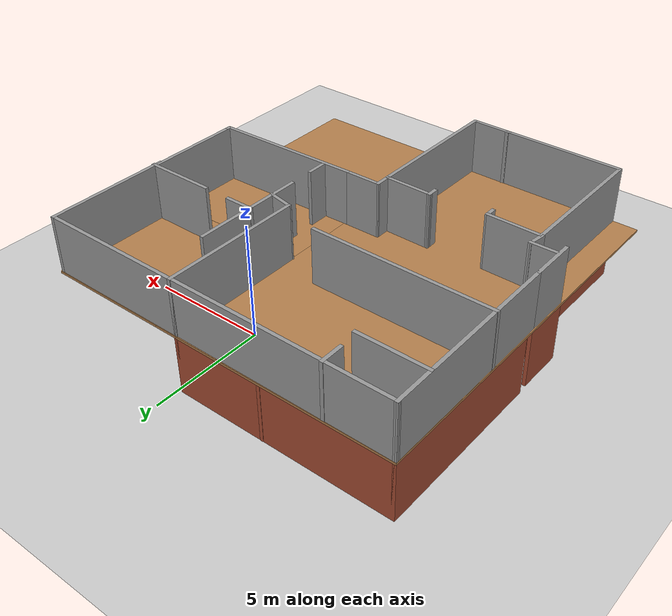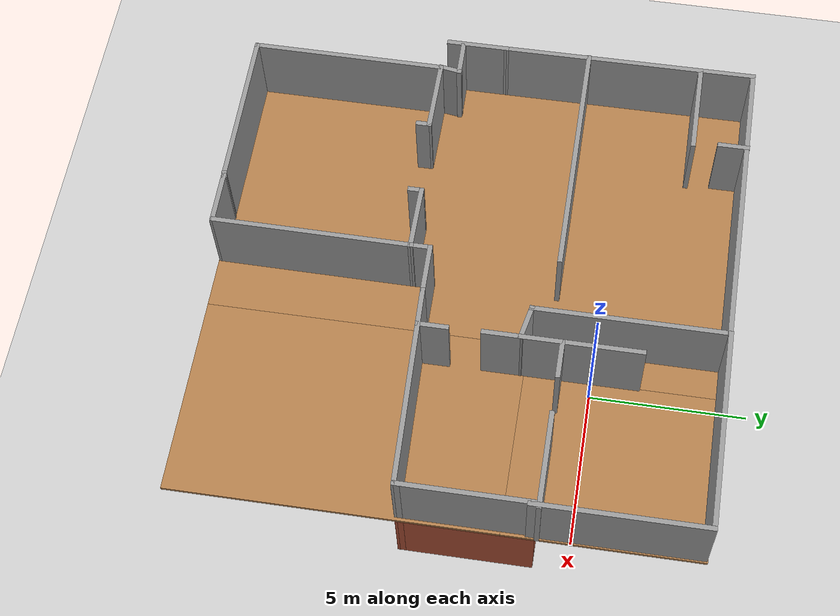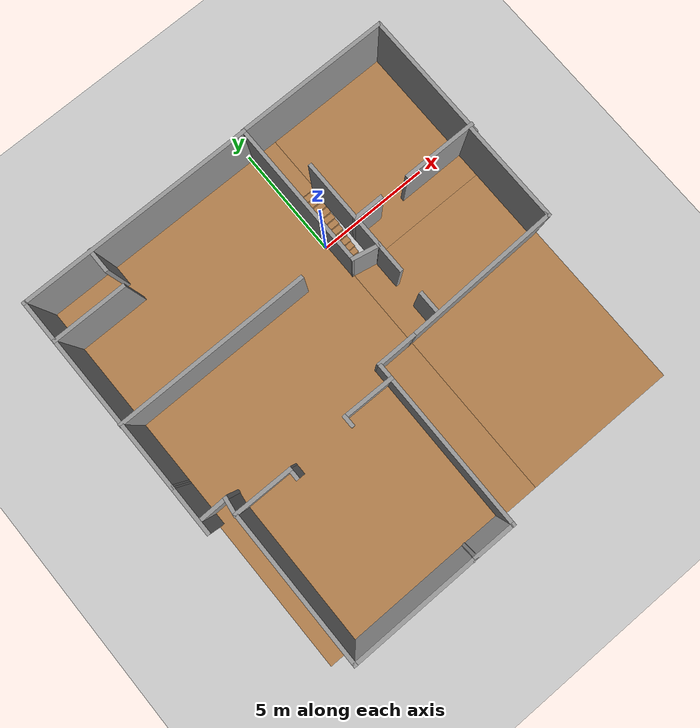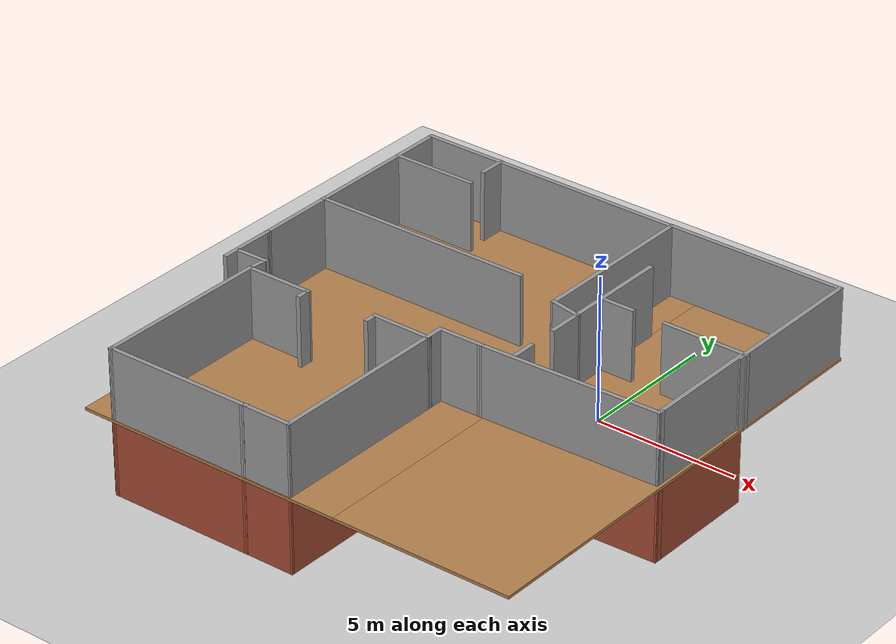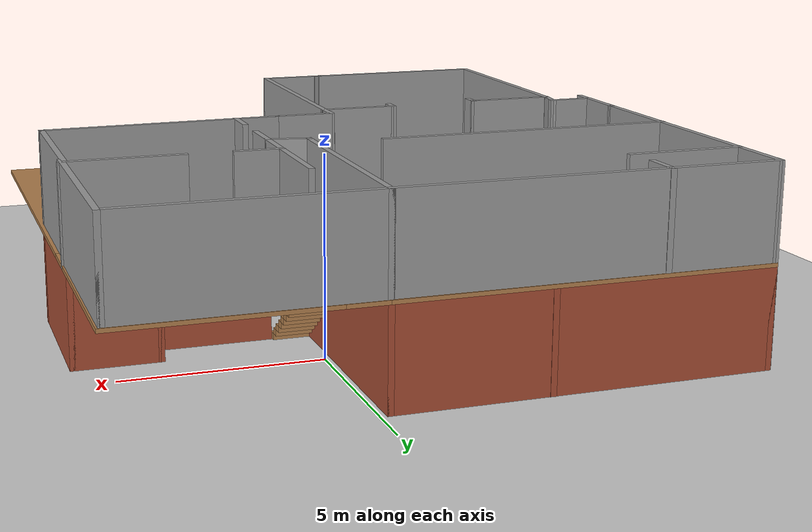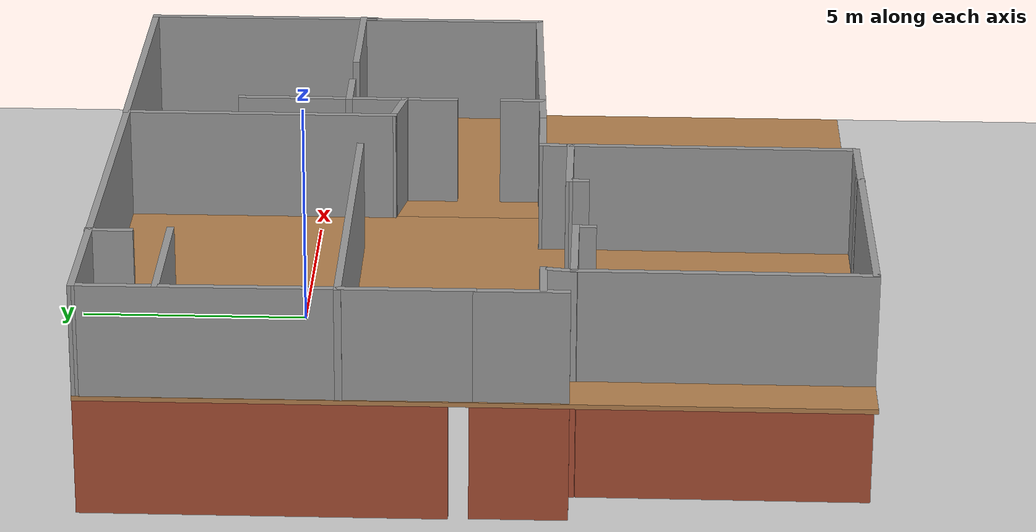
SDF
<sdf version="1.6">
 <world name="default">
  <model name="ground_plane">
   <static>1</static>
   <link name="link">
    <collision name="collision">
     <geometry><plane><normal>0 0 1</normal><size>100 100</size></plane></geometry>
     <surface>
      <contact><collide_bitmask>65535</collide_bitmask></contact>
      <friction><ode><mu>100</mu><mu2>50</mu2></ode></friction>
     </surface>
    </collision>
    <visual name="visual">
     <cast_shadows>0</cast_shadows>
     <geometry><plane><normal>0 0 1</normal><size>100 100</size></plane></geometry>
     <material>
      <script><uri>file://media/materials/scripts/gazebo.material</uri><name>Gazebo/Grey</name></script>
     </material>
    </visual>
   </link>
  </model>
  <model name="bush_house_simple">
   <pose>-1.82726 -4.05043 0 0 -0 0</pose>
   <link name="Floor_0">
    <pose>0 -0.001831 2.5 0 -0 0</pose>
    <visual name="Floor_0_Visual_0">
     <pose>-3.10828 0 0.05 0 -0 0</pose>
     <geometry><box><size>9.42798 16.0306 0.1</size></box></geometry>
     <material>
      <script><uri>file://media/materials/scripts/gazebo.material</uri><name>Gazebo/Wood</name></script>
      <ambient>0.760784 0.662745 0.627451 1</ambient>
     </material>
     <meta><layer>1</layer></meta>
    </visual>
    <collision name="Floor_0_Collision_0">
     <geometry><box><size>9.42798 16.0306 0.1</size></box></geometry>
     <pose>-3.10828 0 0.05 0 -0 0</pose>
    </collision>
    <visual name="Floor_0_Visual_1">
     <pose>4.71399 -3.0044 0.05 0 -0 0</pose>
     <geometry><box><size>6.21657 10.0218 0.1</size></box></geometry>
     <material>
      <script><uri>file://media/materials/scripts/gazebo.material</uri><name>Gazebo/Wood</name></script>
      <ambient>0.760784 0.662745 0.627451 1</ambient>
     </material>
     <meta><layer>1</layer></meta>
    </visual>
    <collision name="Floor_0_Collision_1">
     <geometry><box><size>6.21657 10.0218 0.1</size></box></geometry>
     <pose>4.71399 -3.0044 0.05 0 -0 0</pose>
    </collision>
    <visual name="Floor_0_Visual_2">
     <pose>5.21399 5.01089 0.05 0 -0 0</pose>
     <geometry><box><size>5.21657 6.0088 0.1</size></box></geometry>
     <material>
      <script><uri>file://media/materials/scripts/gazebo.material</uri><name>Gazebo/Wood</name></script>
      <ambient>0.760784 0.662745 0.627451 1</ambient>
     </material>
     <meta><layer>1</layer></meta>
    </visual>
    <collision name="Floor_0_Collision_2">
     <geometry><box><size>5.21657 6.0088 0.1</size></box></geometry>
     <pose>5.21399 5.01089 0.05 0 -0 0</pose>
    </collision>
    <visual name="Floor_0_Visual_3">
     <pose>2.1057 6.76089 0.05 0 -0 0</pose>
     <geometry><box><size>1 2.5088 0.1</size></box></geometry>
     <material>
      <script><uri>file://media/materials/scripts/gazebo.material</uri><name>Gazebo/Wood</name></script>
      <ambient>0.760784 0.662745 0.627451 1</ambient>
     </material>
     <meta><layer>1</layer></meta>
    </visual>
    <collision name="Floor_0_Collision_3">
     <geometry><box><size>1 2.5088 0.1</size></box></geometry>
     <pose>2.1057 6.76089 0.05 0 -0 0</pose>
    </collision>
   </link>
   <link name="Stairs_0">
    <visual name="Stairs_0_Visual_0">
     <pose>2.1057 2.12133 0.083333 0 -0 -3.14159</pose>
     <geometry><box><size>1 0.233333 0.166667</size></box></geometry>
     <material>
      <script><uri>file://media/materials/scripts/gazebo.material</uri><name>Gazebo/Wood</name></script>
      <ambient>1 1 1 1</ambient>
     </material>
     <meta><layer>0</layer></meta>
    </visual>
    <collision name="Stairs_0_Collision_0">
     <geometry><box><size>1 0.233333 0.166667</size></box></geometry>
     <pose>2.1057 2.12133 0.083333 0 -0 -3.14159</pose>
    </collision>
    <visual name="Stairs_0_Visual_1">
     <pose>2.1057 2.35466 0.25 0 -0 -3.14159</pose>
     <geometry><box><size>1 0.233333 0.166667</size></box></geometry>
     <material>
      <script><uri>file://media/materials/scripts/gazebo.material</uri><name>Gazebo/Wood</name></script>
      <ambient>1 1 1 1</ambient>
     </material>
     <meta><layer>0</layer></meta>
    </visual>
    <collision name="Stairs_0_Collision_1">
     <geometry><box><size>1 0.233333 0.166667</size></box></geometry>
     <pose>2.1057 2.35466 0.25 0 -0 -3.14159</pose>
    </collision>
    <visual name="Stairs_0_Visual_2">
     <pose>2.1057 2.58799 0.416667 0 -0 -3.14159</pose>
     <geometry><box><size>1 0.233333 0.166667</size></box></geometry>
     <material>
      <script><uri>file://media/materials/scripts/gazebo.material</uri><name>Gazebo/Wood</name></script>
      <ambient>1 1 1 1</ambient>
     </material>
     <meta><layer>0</layer></meta>
    </visual>
    <collision name="Stairs_0_Collision_2">
     <geometry><box><size>1 0.233333 0.166667</size></box></geometry>
     <pose>2.1057 2.58799 0.416667 0 -0 -3.14159</pose>
    </collision>
    <visual name="Stairs_0_Visual_3">
     <pose>2.1057 2.82133 0.583333 0 -0 -3.14159</pose>
     <geometry><box><size>1 0.233333 0.166667</size></box></geometry>
     <material>
      <script><uri>file://media/materials/scripts/gazebo.material</uri><name>Gazebo/Wood</name></script>
      <ambient>1 1 1 1</ambient>
     </material>
     <meta><layer>0</layer></meta>
    </visual>
    <collision name="Stairs_0_Collision_3">
     <geometry><box><size>1 0.233333 0.166667</size></box></geometry>
     <pose>2.1057 2.82133 0.583333 0 -0 -3.14159</pose>
    </collision>
    <visual name="Stairs_0_Visual_4">
     <pose>2.1057 3.05466 0.75 0 -0 -3.14159</pose>
     <geometry><box><size>1 0.233333 0.166667</size></box></geometry>
     <material>
      <script><uri>file://media/materials/scripts/gazebo.material</uri><name>Gazebo/Wood</name></script>
      <ambient>1 1 1 1</ambient>
     </material>
     <meta><layer>0</layer></meta>
    </visual>
    <collision name="Stairs_0_Collision_4">
     <geometry><box><size>1 0.233333 0.166667</size></box></geometry>
     <pose>2.1057 3.05466 0.75 0 -0 -3.14159</pose>
    </collision>
    <visual name="Stairs_0_Visual_5">
     <pose>2.1057 3.28799 0.916667 0 -0 -3.14159</pose>
     <geometry><box><size>1 0.233333 0.166667</size></box></geometry>
     <material>
      <script><uri>file://media/materials/scripts/gazebo.material</uri><name>Gazebo/Wood</name></script>
      <ambient>1 1 1 1</ambient>
     </material>
     <meta><layer>0</layer></meta>
    </visual>
    <collision name="Stairs_0_Collision_5">
     <geometry><box><size>1 0.233333 0.166667</size></box></geometry>
     <pose>2.1057 3.28799 0.916667 0 -0 -3.14159</pose>
    </collision>
    <visual name="Stairs_0_Visual_6">
     <pose>2.1057 3.52133 1.08333 0 -0 -3.14159</pose>
     <geometry><box><size>1 0.233333 0.166667</size></box></geometry>
     <material>
      <script><uri>file://media/materials/scripts/gazebo.material</uri><name>Gazebo/Wood</name></script>
      <ambient>1 1 1 1</ambient>
     </material>
     <meta><layer>0</layer></meta>
    </visual>
    <collision name="Stairs_0_Collision_6">
     <geometry><box><size>1 0.233333 0.166667</size></box></geometry>
     <pose>2.1057 3.52133 1.08333 0 -0 -3.14159</pose>
    </collision>
    <visual name="Stairs_0_Visual_7">
     <pose>2.1057 3.75466 1.25 0 -0 -3.14159</pose>
     <geometry><box><size>1 0.233333 0.166667</size></box></geometry>
     <material>
      <script><uri>file://media/materials/scripts/gazebo.material</uri><name>Gazebo/Wood</name></script>
      <ambient>1 1 1 1</ambient>
     </material>
     <meta><layer>0</layer></meta>
    </visual>
    <collision name="Stairs_0_Collision_7">
     <geometry><box><size>1 0.233333 0.166667</size></box></geometry>
     <pose>2.1057 3.75466 1.25 0 -0 -3.14159</pose>
    </collision>
    <visual name="Stairs_0_Visual_8">
     <pose>2.1057 3.98799 1.41667 0 -0 -3.14159</pose>
     <geometry><box><size>1 0.233333 0.166667</size></box></geometry>
     <material>
      <script><uri>file://media/materials/scripts/gazebo.material</uri><name>Gazebo/Wood</name></script>
      <ambient>1 1 1 1</ambient>
     </material>
     <meta><layer>0</layer></meta>
    </visual>
    <collision name="Stairs_0_Collision_8">
     <geometry><box><size>1 0.233333 0.166667</size></box></geometry>
     <pose>2.1057 3.98799 1.41667 0 -0 -3.14159</pose>
    </collision>
    <visual name="Stairs_0_Visual_9">
     <pose>2.1057 4.22133 1.58333 0 -0 -3.14159</pose>
     <geometry><box><size>1 0.233333 0.166667</size></box></geometry>
     <material>
      <script><uri>file://media/materials/scripts/gazebo.material</uri><name>Gazebo/Wood</name></script>
      <ambient>1 1 1 1</ambient>
     </material>
     <meta><layer>0</layer></meta>
    </visual>
    <collision name="Stairs_0_Collision_9">
     <geometry><box><size>1 0.233333 0.166667</size></box></geometry>
     <pose>2.1057 4.22133 1.58333 0 -0 -3.14159</pose>
    </collision>
    <visual name="Stairs_0_Visual_10">
     <pose>2.1057 4.45466 1.75 0 -0 -3.14159</pose>
     <geometry><box><size>1 0.233333 0.166667</size></box></geometry>
     <material>
      <script><uri>file://media/materials/scripts/gazebo.material</uri><name>Gazebo/Wood</name></script>
      <ambient>1 1 1 1</ambient>
     </material>
     <meta><layer>0</layer></meta>
    </visual>
    <collision name="Stairs_0_Collision_10">
     <geometry><box><size>1 0.233333 0.166667</size></box></geometry>
     <pose>2.1057 4.45466 1.75 0 -0 -3.14159</pose>
    </collision>
    <visual name="Stairs_0_Visual_11">
     <pose>2.1057 4.68799 1.91667 0 -0 -3.14159</pose>
     <geometry><box><size>1 0.233333 0.166667</size></box></geometry>
     <material>
      <script><uri>file://media/materials/scripts/gazebo.material</uri><name>Gazebo/Wood</name></script>
      <ambient>1 1 1 1</ambient>
     </material>
     <meta><layer>0</layer></meta>
    </visual>
    <collision name="Stairs_0_Collision_11">
     <geometry><box><size>1 0.233333 0.166667</size></box></geometry>
     <pose>2.1057 4.68799 1.91667 0 -0 -3.14159</pose>
    </collision>
    <visual name="Stairs_0_Visual_12">
     <pose>2.1057 4.92133 2.08333 0 -0 -3.14159</pose>
     <geometry><box><size>1 0.233333 0.166667</size></box></geometry>
     <material>
      <script><uri>file://media/materials/scripts/gazebo.material</uri><name>Gazebo/Wood</name></script>
      <ambient>1 1 1 1</ambient>
     </material>
     <meta><layer>0</layer></meta>
    </visual>
    <collision name="Stairs_0_Collision_12">
     <geometry><box><size>1 0.233333 0.166667</size></box></geometry>
     <pose>2.1057 4.92133 2.08333 0 -0 -3.14159</pose>
    </collision>
    <visual name="Stairs_0_Visual_13">
     <pose>2.1057 5.15466 2.25 0 -0 -3.14159</pose>
     <geometry><box><size>1 0.233333 0.166667</size></box></geometry>
     <material>
      <script><uri>file://media/materials/scripts/gazebo.material</uri><name>Gazebo/Wood</name></script>
      <ambient>1 1 1 1</ambient>
     </material>
     <meta><layer>0</layer></meta>
    </visual>
    <collision name="Stairs_0_Collision_13">
     <geometry><box><size>1 0.233333 0.166667</size></box></geometry>
     <pose>2.1057 5.15466 2.25 0 -0 -3.14159</pose>
    </collision>
    <visual name="Stairs_0_Visual_14">
     <pose>2.1057 5.38799 2.41667 0 -0 -3.14159</pose>
     <geometry><box><size>1 0.233333 0.166667</size></box></geometry>
     <material>
      <script><uri>file://media/materials/scripts/gazebo.material</uri><name>Gazebo/Wood</name></script>
      <ambient>1 1 1 1</ambient>
     </material>
     <meta><layer>0</layer></meta>
    </visual>
    <collision name="Stairs_0_Collision_14">
     <geometry><box><size>1 0.233333 0.166667</size></box></geometry>
     <pose>2.1057 5.38799 2.41667 0 -0 -3.14159</pose>
    </collision>
   </link>
   <link name="Wall_0">
    <collision name="Wall_0_Collision">
     <geometry><box><size>2 0.15 2.5</size></box></geometry>
     <pose>0 0 1.25 0 -0 0</pose>
    </collision>
    <visual name="Wall_0_Visual">
     <pose>0 0 1.25 0 -0 0</pose>
     <geometry><box><size>2 0.15 2.5</size></box></geometry>
     <material>
      <script><uri>file://media/materials/scripts/gazebo.material</uri><name>Gazebo/Bricks</name></script>
      <ambient>1 1 1 1</ambient>
     </material>
     <meta><layer>0</layer></meta>
    </visual>
    <pose>-7.71193 -0.907072 0 0 -0 -1.5708</pose>
   </link>
   <link name="Wall_100">
    <collision name="Wall_100_Collision">
     <geometry><box><size>1 0.15 2.5</size></box></geometry>
     <pose>0 0 1.25 0 -0 0</pose>
    </collision>
    <visual name="Wall_100_Visual">
     <pose>0 0 1.25 0 -0 0</pose>
     <geometry><box><size>1 0.15 2.5</size></box></geometry>
     <material>
      <script><uri>file://media/materials/scripts/gazebo.material</uri><name>Gazebo/Grey</name></script>
      <ambient>1 1 1 1</ambient>
     </material>
     <meta><layer>1</layer></meta>
    </visual>
    <pose>2.60162 -0.749585 2.5 0 -0 1.5708</pose>
   </link>
   <link name="Wall_102">
    <collision name="Wall_102_Collision">
     <geometry><box><size>1 0.15 2.5</size></box></geometry>
     <pose>0 0 1.25 0 -0 0</pose>
    </collision>
    <visual name="Wall_102_Visual">
     <pose>0 0 1.25 0 -0 0</pose>
     <geometry><box><size>1 0.15 2.5</size></box></geometry>
     <material>
      <script><uri>file://media/materials/scripts/gazebo.material</uri><name>Gazebo/Grey</name></script>
      <ambient>1 1 1 1</ambient>
     </material>
     <meta><layer>1</layer></meta>
    </visual>
    <pose>-4.98099 7.51346 2.5 0 -0 -1.5708</pose>
   </link>
   <link name="Wall_104">
    <collision name="Wall_104_Collision">
     <geometry><box><size>3 0.15 2.5</size></box></geometry>
     <pose>0 0 1.25 0 -0 0</pose>
    </collision>
    <visual name="Wall_104_Visual">
     <pose>0 0 1.25 0 -0 0</pose>
     <geometry><box><size>3 0.15 2.5</size></box></geometry>
     <material>
      <script><uri>file://media/materials/scripts/gazebo.material</uri><name>Gazebo/Grey</name></script>
      <ambient>1 1 1 1</ambient>
     </material>
     <meta><layer>1</layer></meta>
    </visual>
    <pose>-6.30381 6.26889 2.5 0 -0 0</pose>
   </link>
   <link name="Wall_11">
    <collision name="Wall_11_Collision">
     <geometry><box><size>2.12104 0.15 2.5</size></box></geometry>
     <pose>0 0 1.25 0 -0 0</pose>
    </collision>
    <visual name="Wall_11_Visual">
     <pose>0 0 1.25 0 -0 0</pose>
     <geometry><box><size>2.12104 0.15 2.5</size></box></geometry>
     <material>
      <script><uri>file://media/materials/scripts/gazebo.material</uri><name>Gazebo/Bricks</name></script>
      <ambient>1 1 1 1</ambient>
     </material>
     <meta><layer>0</layer></meta>
    </visual>
    <pose>-0.994074 -1.81997 0 0 -0 -0.007673</pose>
   </link>
   <link name="Wall_12">
    <collision name="Wall_12_Collision">
     <geometry><box><size>0.75 0.15 2.5</size></box></geometry>
     <pose>0 0 1.25 0 -0 0</pose>
    </collision>
    <visual name="Wall_12_Visual">
     <pose>0 0 1.25 0 -0 0</pose>
     <geometry><box><size>0.75 0.15 2.5</size></box></geometry>
     <material>
      <script><uri>file://media/materials/scripts/gazebo.material</uri><name>Gazebo/Bricks</name></script>
      <ambient>1 1 1 1</ambient>
     </material>
     <meta><layer>0</layer></meta>
    </visual>
    <pose>-0.008583 -1.52753 0 0 -0 1.5708</pose>
   </link>
   <link name="Wall_13">
    <collision name="Wall_13_Collision">
     <geometry><box><size>1.62909 0.15 2.5</size></box></geometry>
     <pose>0 0 1.25 0 -0 0</pose>
    </collision>
    <visual name="Wall_13_Visual">
     <pose>0 0 1.25 0 -0 0</pose>
     <geometry><box><size>1.62909 0.15 2.5</size></box></geometry>
     <material>
      <script><uri>file://media/materials/scripts/gazebo.material</uri><name>Gazebo/Bricks</name></script>
      <ambient>1 1 1 1</ambient>
     </material>
     <meta><layer>0</layer></meta>
    </visual>
    <pose>0.730926 -1.21997 0 0 -0 0.010225</pose>
   </link>
   <link name="Wall_18">
    <collision name="Wall_18_Collision">
     <geometry><box><size>0.24317 0.15 2.5</size></box></geometry>
     <pose>0 0 1.25 0 -0 0</pose>
    </collision>
    <visual name="Wall_18_Visual">
     <pose>0 0 1.25 0 -0 0</pose>
     <geometry><box><size>0.24317 0.15 2.5</size></box></geometry>
     <material>
      <script><uri>file://media/materials/scripts/gazebo.material</uri><name>Gazebo/Bricks</name></script>
      <ambient>1 1 1 1</ambient>
     </material>
     <meta><layer>0</layer></meta>
    </visual>
    <pose>-1.67458 -7.9092 0 0 -0 0.221775</pose>
   </link>
   <link name="Wall_19">
    <collision name="Wall_19_Collision">
     <geometry><box><size>1.75 0.15 2.5</size></box></geometry>
     <pose>0 0 1.25 0 -0 0</pose>
    </collision>
    <visual name="Wall_19_Visual">
     <pose>0 0 1.25 0 -0 0</pose>
     <geometry><box><size>1.75 0.15 2.5</size></box></geometry>
     <material>
      <script><uri>file://media/materials/scripts/gazebo.material</uri><name>Gazebo/Bricks</name></script>
      <ambient>1 1 1 1</ambient>
     </material>
     <meta><layer>0</layer></meta>
    </visual>
    <pose>-0.844256 -7.91408 0 0 -0 0</pose>
   </link>
   <link name="Wall_20">
    <collision name="Wall_20_Collision">
     <geometry><box><size>6.25178 0.15 2.5</size></box></geometry>
     <pose>0 0 1.25 0 -0 0</pose>
    </collision>
    <visual name="Wall_20_Visual">
     <pose>0 0 1.25 0 -0 0</pose>
     <geometry><box><size>6.25178 0.15 2.5</size></box></geometry>
     <material>
      <script><uri>file://media/materials/scripts/gazebo.material</uri><name>Gazebo/Bricks</name></script>
      <ambient>1 1 1 1</ambient>
     </material>
     <meta><layer>0</layer></meta>
    </visual>
    <pose>-0.02642 -4.86324 0 0 -0 1.56495</pose>
   </link>
   <link name="Wall_22">
    <collision name="Wall_22_Collision">
     <geometry><box><size>6.13704 0.15 2.5</size></box></geometry>
     <pose>0 0 1.25 0 -0 0</pose>
    </collision>
    <visual name="Wall_22_Visual">
     <pose>0 0 1.25 0 -0 0</pose>
     <geometry><box><size>6.13704 0.15 2.5</size></box></geometry>
     <material>
      <script><uri>file://media/materials/scripts/gazebo.material</uri><name>Gazebo/Bricks</name></script>
      <ambient>1 1 1 1</ambient>
     </material>
     <meta><layer>0</layer></meta>
    </visual>
    <pose>-6.68069 -4.94829 0 0 -0 -1.57451</pose>
   </link>
   <link name="Wall_24">
    <collision name="Wall_24_Collision">
     <geometry><box><size>5.10672 0.15 2.5</size></box></geometry>
     <pose>0 0 1.25 0 -0 0</pose>
    </collision>
    <visual name="Wall_24_Visual">
     <pose>0 0 1.25 0 -0 0</pose>
     <geometry><box><size>5.10672 0.15 2.5</size></box></geometry>
     <material>
      <script><uri>file://media/materials/scripts/gazebo.material</uri><name>Gazebo/Bricks</name></script>
      <ambient>1 1 1 1</ambient>
     </material>
     <meta><layer>0</layer></meta>
    </visual>
    <pose>-4.19836 -7.93062 0 0 -0 0.004506</pose>
   </link>
   <link name="Wall_27">
    <collision name="Wall_27_Collision">
     <geometry><box><size>7.5 0.15 2.5</size></box></geometry>
     <pose>0 0 1.25 0 -0 0</pose>
    </collision>
    <visual name="Wall_27_Visual">
     <pose>0 0 1.25 0 -0 0</pose>
     <geometry><box><size>7.5 0.15 2.5</size></box></geometry>
     <material>
      <script><uri>file://media/materials/scripts/gazebo.material</uri><name>Gazebo/Bricks</name></script>
      <ambient>1 1 1 1</ambient>
     </material>
     <meta><layer>0</layer></meta>
    </visual>
    <pose>-7.74694 4.25546 0 0 -0 1.5708</pose>
   </link>
   <link name="Wall_28">
    <collision name="Wall_28_Collision">
     <geometry><box><size>9.5 0.15 2.5</size></box></geometry>
     <pose>0 0 1.25 0 -0 0</pose>
    </collision>
    <visual name="Wall_28_Visual">
     <pose>0 0 1.25 0 -0 0</pose>
     <geometry><box><size>9.5 0.15 2.5</size></box></geometry>
     <material>
      <script><uri>file://media/materials/scripts/gazebo.material</uri><name>Gazebo/Bricks</name></script>
      <ambient>1 1 1 1</ambient>
     </material>
     <meta><layer>0</layer></meta>
    </visual>
    <pose>-3.07194 7.93046 0 0 -0 0</pose>
   </link>
   <link name="Wall_31">
    <collision name="Wall_31_Collision">
     <geometry><box><size>2.5 0.15 2.5</size></box></geometry>
     <pose>0 0 1.25 0 -0 0</pose>
    </collision>
    <visual name="Wall_31_Visual">
     <pose>0 0 1.25 0 -0 0</pose>
     <geometry><box><size>2.5 0.15 2.5</size></box></geometry>
     <material>
      <script><uri>file://media/materials/scripts/gazebo.material</uri><name>Gazebo/Bricks</name></script>
      <ambient>1 1 1 1</ambient>
     </material>
     <meta><layer>0</layer></meta>
    </visual>
    <pose>-6.5464 4.35254 0 0 -0 0</pose>
   </link>
   <link name="Wall_33">
    <collision name="Wall_33_Collision">
     <geometry><box><size>2.25 0.15 2.5</size></box></geometry>
     <pose>0 0 1.25 0 -0 0</pose>
    </collision>
    <visual name="Wall_33_Visual">
     <pose>0 0 1.25 0 -0 0</pose>
     <geometry><box><size>2.25 0.15 2.5</size></box></geometry>
     <material>
      <script><uri>file://media/materials/scripts/gazebo.material</uri><name>Gazebo/Bricks</name></script>
      <ambient>1 1 1 1</ambient>
     </material>
     <meta><layer>0</layer></meta>
    </visual>
    <pose>-3.39004 4.37243 0 0 -0 0</pose>
   </link>
   <link name="Wall_4">
    <collision name="Wall_4_Collision">
     <geometry><box><size>1.19765 0.15 2.5</size></box></geometry>
     <pose>0 0 1.25 0 -0 0</pose>
    </collision>
    <visual name="Wall_4_Visual">
     <pose>0 0 1.25 0 -0 0</pose>
     <geometry><box><size>1.19765 0.15 2.5</size></box></geometry>
     <material>
      <script><uri>file://media/materials/scripts/gazebo.material</uri><name>Gazebo/Bricks</name></script>
      <ambient>1 1 1 1</ambient>
     </material>
     <meta><layer>0</layer></meta>
    </visual>
    <pose>-7.10771 -1.36235 0 0 -0 0.014436</pose>
   </link>
   <link name="Wall_40">
    <collision name="Wall_40_Collision">
     <geometry><box><size>2 0.15 2.5</size></box></geometry>
     <pose>0 0 1.25 0 -0 0</pose>
    </collision>
    <visual name="Wall_40_Visual">
     <pose>0 0 1.25 0 -0 0</pose>
     <geometry><box><size>2 0.15 2.5</size></box></geometry>
     <material>
      <script><uri>file://media/materials/scripts/gazebo.material</uri><name>Gazebo/Bricks</name></script>
      <ambient>1 1 1 1</ambient>
     </material>
     <meta><layer>0</layer></meta>
    </visual>
    <pose>-1.41504 4.37243 0 0 -0 0</pose>
   </link>
   <link name="Wall_42">
    <collision name="Wall_42_Collision">
     <geometry><box><size>2.5 0.15 2.5</size></box></geometry>
     <pose>0 0 1.25 0 -0 0</pose>
    </collision>
    <visual name="Wall_42_Visual">
     <pose>0 0 1.25 0 -0 0</pose>
     <geometry><box><size>2.5 0.15 2.5</size></box></geometry>
     <material>
      <script><uri>file://media/materials/scripts/gazebo.material</uri><name>Gazebo/Bricks</name></script>
      <ambient>1 1 1 1</ambient>
     </material>
     <meta><layer>0</layer></meta>
    </visual>
    <pose>-2.23418 6.76712 0 0 -0 -1.5708</pose>
   </link>
   <link name="Wall_46">
    <collision name="Wall_46_Collision">
     <geometry><box><size>6 0.15 2.5</size></box></geometry>
     <pose>0 0 1.25 0 -0 0</pose>
    </collision>
    <visual name="Wall_46_Visual">
     <pose>0 0 1.25 0 -0 0</pose>
     <geometry><box><size>6 0.15 2.5</size></box></geometry>
     <material>
      <script><uri>file://media/materials/scripts/gazebo.material</uri><name>Gazebo/Bricks</name></script>
      <ambient>1 1 1 1</ambient>
     </material>
     <meta><layer>0</layer></meta>
    </visual>
    <pose>1.60306 5.00546 0 0 -0 -1.5708</pose>
   </link>
   <link name="Wall_48">
    <collision name="Wall_48_Collision">
     <geometry><box><size>3 0.15 2.5</size></box></geometry>
     <pose>0 0 1.25 0 -0 0</pose>
    </collision>
    <visual name="Wall_48_Visual">
     <pose>0 0 1.25 0 -0 0</pose>
     <geometry><box><size>3 0.15 2.5</size></box></geometry>
     <material>
      <script><uri>file://media/materials/scripts/gazebo.material</uri><name>Gazebo/Bricks</name></script>
      <ambient>1 1 1 1</ambient>
     </material>
     <meta><layer>0</layer></meta>
    </visual>
    <pose>4.12806 2.08046 0 0 -0 0</pose>
   </link>
   <link name="Wall_49">
    <collision name="Wall_49_Collision">
     <geometry><box><size>1 0.15 2.5</size></box></geometry>
     <pose>0 0 1.25 0 -0 0</pose>
    </collision>
    <visual name="Wall_49_Visual">
     <pose>0 0 1.25 0 -0 0</pose>
     <geometry><box><size>1 0.15 2.5</size></box></geometry>
     <material>
      <script><uri>file://media/materials/scripts/gazebo.material</uri><name>Gazebo/Bricks</name></script>
      <ambient>1 1 1 1</ambient>
     </material>
     <meta><layer>0</layer></meta>
    </visual>
    <pose>5.55306 2.50546 0 0 -0 1.5708</pose>
   </link>
   <link name="Wall_5">
    <collision name="Wall_5_Collision">
     <geometry><box><size>0.756081 0.15 2.5</size></box></geometry>
     <pose>0 0 1.25 0 -0 0</pose>
    </collision>
    <visual name="Wall_5_Visual">
     <pose>0 0 1.25 0 -0 0</pose>
     <geometry><box><size>0.756081 0.15 2.5</size></box></geometry>
     <material>
      <script><uri>file://media/materials/scripts/gazebo.material</uri><name>Gazebo/Bricks</name></script>
      <ambient>1 1 1 1</ambient>
     </material>
     <meta><layer>0</layer></meta>
    </visual>
    <pose>-6.64188 -1.65479 0 0 -0 -1.71257</pose>
   </link>
   <link name="Wall_51">
    <collision name="Wall_51_Collision">
     <geometry><box><size>2.25 0.15 2.5</size></box></geometry>
     <pose>0 0 1.25 0 -0 0</pose>
    </collision>
    <visual name="Wall_51_Visual">
     <pose>0 0 1.25 0 -0 0</pose>
     <geometry><box><size>2.25 0.15 2.5</size></box></geometry>
     <material>
      <script><uri>file://media/materials/scripts/gazebo.material</uri><name>Gazebo/Bricks</name></script>
      <ambient>1 1 1 1</ambient>
     </material>
     <meta><layer>0</layer></meta>
    </visual>
    <pose>6.60306 2.93046 0 0 -0 0</pose>
   </link>
   <link name="Wall_52">
    <collision name="Wall_52_Collision">
     <geometry><box><size>4 0.15 2.5</size></box></geometry>
     <pose>0 0 1.25 0 -0 0</pose>
    </collision>
    <visual name="Wall_52_Visual">
     <pose>0 0 1.25 0 -0 0</pose>
     <geometry><box><size>4 0.15 2.5</size></box></geometry>
     <material>
      <script><uri>file://media/materials/scripts/gazebo.material</uri><name>Gazebo/Bricks</name></script>
      <ambient>1 1 1 1</ambient>
     </material>
     <meta><layer>0</layer></meta>
    </visual>
    <pose>7.65306 1.00546 0 0 -0 -1.5708</pose>
   </link>
   <link name="Wall_53">
    <collision name="Wall_53_Collision">
     <geometry><box><size>0.25 0.15 2.5</size></box></geometry>
     <pose>0 0 1.25 0 -0 0</pose>
    </collision>
    <visual name="Wall_53_Visual">
     <pose>0 0 1.25 0 -0 0</pose>
     <geometry><box><size>0.25 0.15 2.5</size></box></geometry>
     <material>
      <script><uri>file://media/materials/scripts/gazebo.material</uri><name>Gazebo/Bricks</name></script>
      <ambient>1 1 1 1</ambient>
     </material>
     <meta><layer>0</layer></meta>
    </visual>
    <pose>7.65306 -0.969537 0 0 -0 -1.5708</pose>
   </link>
   <link name="Wall_54">
    <collision name="Wall_54_Collision">
     <geometry><box><size>6.33563 0.15 2.5</size></box></geometry>
     <pose>0 0 1.25 0 -0 0</pose>
    </collision>
    <visual name="Wall_54_Visual">
     <pose>0 0 1.25 0 -0 0</pose>
     <geometry><box><size>6.33563 0.15 2.5</size></box></geometry>
     <material>
      <script><uri>file://media/materials/scripts/gazebo.material</uri><name>Gazebo/Bricks</name></script>
      <ambient>1 1 1 1</ambient>
     </material>
     <meta><layer>0</layer></meta>
    </visual>
    <pose>4.56175 -1.11597 0 0 -0 -3.11041</pose>
   </link>
   <link name="Wall_56">
    <collision name="Wall_56_Collision">
     <geometry><box><size>2 0.15 2.5</size></box></geometry>
     <pose>0 0 1.25 0 -0 0</pose>
    </collision>
    <visual name="Wall_56_Visual">
     <pose>0 0 1.25 0 -0 0</pose>
     <geometry><box><size>2 0.15 2.5</size></box></geometry>
     <material>
      <script><uri>file://media/materials/scripts/gazebo.material</uri><name>Gazebo/Grey</name></script>
      <ambient>1 1 1 1</ambient>
     </material>
     <meta><layer>1</layer></meta>
    </visual>
    <pose>-7.71193 -0.907072 2.5 0 -0 -1.5708</pose>
   </link>
   <link name="Wall_57">
    <collision name="Wall_57_Collision">
     <geometry><box><size>1.19765 0.15 2.5</size></box></geometry>
     <pose>0 0 1.25 0 -0 0</pose>
    </collision>
    <visual name="Wall_57_Visual">
     <pose>0 0 1.25 0 -0 0</pose>
     <geometry><box><size>1.19765 0.15 2.5</size></box></geometry>
     <material>
      <script><uri>file://media/materials/scripts/gazebo.material</uri><name>Gazebo/Grey</name></script>
      <ambient>1 1 1 1</ambient>
     </material>
     <meta><layer>1</layer></meta>
    </visual>
    <pose>-7.10771 -1.36235 2.5 0 -0 0.014436</pose>
   </link>
   <link name="Wall_58">
    <collision name="Wall_58_Collision">
     <geometry><box><size>0.756081 0.15 2.5</size></box></geometry>
     <pose>0 0 1.25 0 -0 0</pose>
    </collision>
    <visual name="Wall_58_Visual">
     <pose>0 0 1.25 0 -0 0</pose>
     <geometry><box><size>0.756081 0.15 2.5</size></box></geometry>
     <material>
      <script><uri>file://media/materials/scripts/gazebo.material</uri><name>Gazebo/Grey</name></script>
      <ambient>1 1 1 1</ambient>
     </material>
     <meta><layer>1</layer></meta>
    </visual>
    <pose>-6.64188 -1.65478 2.5 0 -0 -1.71257</pose>
   </link>
   <link name="Wall_59">
    <collision name="Wall_59_Collision">
     <geometry><box><size>2.38815 0.15 2.5</size></box></geometry>
     <pose>0 0 1.25 0 -0 0</pose>
    </collision>
    <visual name="Wall_59_Visual">
     <pose>0 0 1.25 0 -0 0</pose>
     <geometry><box><size>2.38815 0.15 2.5</size></box></geometry>
     <material>
      <script><uri>file://media/materials/scripts/gazebo.material</uri><name>Gazebo/Grey</name></script>
      <ambient>1 1 1 1</ambient>
     </material>
     <meta><layer>1</layer></meta>
    </visual>
    <pose>-5.55053 -1.96235 2.5 0 -0 -0.006757</pose>
   </link>
   <link name="Wall_6">
    <collision name="Wall_6_Collision">
     <geometry><box><size>2.38815 0.15 2.5</size></box></geometry>
     <pose>0 0 1.25 0 -0 0</pose>
    </collision>
    <visual name="Wall_6_Visual">
     <pose>0 0 1.25 0 -0 0</pose>
     <geometry><box><size>2.38815 0.15 2.5</size></box></geometry>
     <material>
      <script><uri>file://media/materials/scripts/gazebo.material</uri><name>Gazebo/Bricks</name></script>
      <ambient>1 1 1 1</ambient>
     </material>
     <meta><layer>0</layer></meta>
    </visual>
    <pose>-5.55053 -1.96235 0 0 -0 -0.006757</pose>
   </link>
   <link name="Wall_60">
    <collision name="Wall_60_Collision">
     <geometry><box><size>0.5 0.15 2.5</size></box></geometry>
     <pose>0 0 1.25 0 -0 0</pose>
    </collision>
    <visual name="Wall_60_Visual">
     <pose>0 0 1.25 0 -0 0</pose>
     <geometry><box><size>0.5 0.15 2.5</size></box></geometry>
     <material>
      <script><uri>file://media/materials/scripts/gazebo.material</uri><name>Gazebo/Grey</name></script>
      <ambient>1 1 1 1</ambient>
     </material>
     <meta><layer>1</layer></meta>
    </visual>
    <pose>-4.43148 -2.14491 2.5 0 -0 -1.5708</pose>
   </link>
   <link name="Wall_61">
    <collision name="Wall_61_Collision">
     <geometry><box><size>0.5 0.15 2.5</size></box></geometry>
     <pose>0 0 1.25 0 -0 0</pose>
    </collision>
    <visual name="Wall_61_Visual">
     <pose>0 0 1.25 0 -0 0</pose>
     <geometry><box><size>0.5 0.15 2.5</size></box></geometry>
     <material>
      <script><uri>file://media/materials/scripts/gazebo.material</uri><name>Gazebo/Grey</name></script>
      <ambient>1 1 1 1</ambient>
     </material>
     <meta><layer>1</layer></meta>
    </visual>
    <pose>-1.97957 -1.98741 2.5 0 -0 -1.5708</pose>
   </link>
   <link name="Wall_62">
    <collision name="Wall_62_Collision">
     <geometry><box><size>2.12104 0.15 2.5</size></box></geometry>
     <pose>0 0 1.25 0 -0 0</pose>
    </collision>
    <visual name="Wall_62_Visual">
     <pose>0 0 1.25 0 -0 0</pose>
     <geometry><box><size>2.12104 0.15 2.5</size></box></geometry>
     <material>
      <script><uri>file://media/materials/scripts/gazebo.material</uri><name>Gazebo/Grey</name></script>
      <ambient>1 1 1 1</ambient>
     </material>
     <meta><layer>1</layer></meta>
    </visual>
    <pose>-0.994074 -1.81997 2.5 0 -0 -0.007673</pose>
   </link>
   <link name="Wall_63">
    <collision name="Wall_63_Collision">
     <geometry><box><size>0.75 0.15 2.5</size></box></geometry>
     <pose>0 0 1.25 0 -0 0</pose>
    </collision>
    <visual name="Wall_63_Visual">
     <pose>0 0 1.25 0 -0 0</pose>
     <geometry><box><size>0.75 0.15 2.5</size></box></geometry>
     <material>
      <script><uri>file://media/materials/scripts/gazebo.material</uri><name>Gazebo/Grey</name></script>
      <ambient>1 1 1 1</ambient>
     </material>
     <meta><layer>1</layer></meta>
    </visual>
    <pose>-0.008583 -1.52753 2.5 0 -0 1.5708</pose>
   </link>
   <link name="Wall_64">
    <collision name="Wall_64_Collision">
     <geometry><box><size>1.62909 0.15 2.5</size></box></geometry>
     <pose>0 0 1.25 0 -0 0</pose>
    </collision>
    <visual name="Wall_64_Visual">
     <pose>0 0 1.25 0 -0 0</pose>
     <geometry><box><size>1.62909 0.15 2.5</size></box></geometry>
     <material>
      <script><uri>file://media/materials/scripts/gazebo.material</uri><name>Gazebo/Grey</name></script>
      <ambient>1 1 1 1</ambient>
     </material>
     <meta><layer>1</layer></meta>
    </visual>
    <pose>0.730926 -1.21997 2.5 0 -0 0.010225</pose>
   </link>
   <link name="Wall_65">
    <collision name="Wall_65_Collision">
     <geometry><box><size>0.24317 0.15 2.5</size></box></geometry>
     <pose>0 0 1.25 0 -0 0</pose>
    </collision>
    <visual name="Wall_65_Visual">
     <pose>0 0 1.25 0 -0 0</pose>
     <geometry><box><size>0.24317 0.15 2.5</size></box></geometry>
     <material>
      <script><uri>file://media/materials/scripts/gazebo.material</uri><name>Gazebo/Grey</name></script>
      <ambient>1 1 1 1</ambient>
     </material>
     <meta><layer>1</layer></meta>
    </visual>
    <pose>-1.67458 -7.9092 2.5 0 -0 0.221775</pose>
   </link>
   <link name="Wall_66">
    <collision name="Wall_66_Collision">
     <geometry><box><size>1.75 0.15 2.5</size></box></geometry>
     <pose>0 0 1.25 0 -0 0</pose>
    </collision>
    <visual name="Wall_66_Visual">
     <pose>0 0 1.25 0 -0 0</pose>
     <geometry><box><size>1.75 0.15 2.5</size></box></geometry>
     <material>
      <script><uri>file://media/materials/scripts/gazebo.material</uri><name>Gazebo/Grey</name></script>
      <ambient>1 1 1 1</ambient>
     </material>
     <meta><layer>1</layer></meta>
    </visual>
    <pose>-0.844256 -7.91408 2.5 0 -0 0</pose>
   </link>
   <link name="Wall_67">
    <collision name="Wall_67_Collision">
     <geometry><box><size>6.25178 0.15 2.5</size></box></geometry>
     <pose>0 0 1.25 0 -0 0</pose>
    </collision>
    <visual name="Wall_67_Visual">
     <pose>0 0 1.25 0 -0 0</pose>
     <geometry><box><size>6.25178 0.15 2.5</size></box></geometry>
     <material>
      <script><uri>file://media/materials/scripts/gazebo.material</uri><name>Gazebo/Grey</name></script>
      <ambient>1 1 1 1</ambient>
     </material>
     <meta><layer>1</layer></meta>
    </visual>
    <pose>-0.02642 -4.86324 2.5 0 -0 1.56495</pose>
   </link>
   <link name="Wall_68">
    <collision name="Wall_68_Collision">
     <geometry><box><size>6.13704 0.15 2.5</size></box></geometry>
     <pose>0 0 1.25 0 -0 0</pose>
    </collision>
    <visual name="Wall_68_Visual">
     <pose>0 0 1.25 0 -0 0</pose>
     <geometry><box><size>6.13704 0.15 2.5</size></box></geometry>
     <material>
      <script><uri>file://media/materials/scripts/gazebo.material</uri><name>Gazebo/Grey</name></script>
      <ambient>1 1 1 1</ambient>
     </material>
     <meta><layer>1</layer></meta>
    </visual>
    <pose>-6.68069 -4.94829 2.5 0 -0 -1.57451</pose>
   </link>
   <link name="Wall_69">
    <collision name="Wall_69_Collision">
     <geometry><box><size>5.10672 0.15 2.5</size></box></geometry>
     <pose>0 0 1.25 0 -0 0</pose>
    </collision>
    <visual name="Wall_69_Visual">
     <pose>0 0 1.25 0 -0 0</pose>
     <geometry><box><size>5.10672 0.15 2.5</size></box></geometry>
     <material>
      <script><uri>file://media/materials/scripts/gazebo.material</uri><name>Gazebo/Grey</name></script>
      <ambient>1 1 1 1</ambient>
     </material>
     <meta><layer>1</layer></meta>
    </visual>
    <pose>-4.19836 -7.93062 2.5 0 -0 0.004506</pose>
   </link>
   <link name="Wall_7">
    <collision name="Wall_7_Collision">
     <geometry><box><size>0.5 0.15 2.5</size></box></geometry>
     <pose>0 0 1.25 0 -0 0</pose>
    </collision>
    <visual name="Wall_7_Visual">
     <pose>0 0 1.25 0 -0 0</pose>
     <geometry><box><size>0.5 0.15 2.5</size></box></geometry>
     <material>
      <script><uri>file://media/materials/scripts/gazebo.material</uri><name>Gazebo/Bricks</name></script>
      <ambient>1 1 1 1</ambient>
     </material>
     <meta><layer>0</layer></meta>
    </visual>
    <pose>-4.43148 -2.14491 0 0 -0 -1.5708</pose>
   </link>
   <link name="Wall_71">
    <collision name="Wall_71_Collision">
     <geometry><box><size>9.5 0.15 2.5</size></box></geometry>
     <pose>0 0 1.25 0 -0 0</pose>
    </collision>
    <visual name="Wall_71_Visual">
     <pose>0 0 1.25 0 -0 0</pose>
     <geometry><box><size>9.5 0.15 2.5</size></box></geometry>
     <material>
      <script><uri>file://media/materials/scripts/gazebo.material</uri><name>Gazebo/Grey</name></script>
      <ambient>1 1 1 1</ambient>
     </material>
     <meta><layer>1</layer></meta>
    </visual>
    <pose>-3.07194 7.91307 2.5 0 -0 -0.00372</pose>
   </link>
   <link name="Wall_76">
    <collision name="Wall_76_Collision">
     <geometry><box><size>6 0.15 2.5</size></box></geometry>
     <pose>0 0 1.25 0 -0 0</pose>
    </collision>
    <visual name="Wall_76_Visual">
     <pose>0 0 1.25 0 -0 0</pose>
     <geometry><box><size>6 0.15 2.5</size></box></geometry>
     <material>
      <script><uri>file://media/materials/scripts/gazebo.material</uri><name>Gazebo/Grey</name></script>
      <ambient>1 1 1 1</ambient>
     </material>
     <meta><layer>1</layer></meta>
    </visual>
    <pose>1.60306 4.98807 2.5 0 -0 -1.5708</pose>
   </link>
   <link name="Wall_80">
    <collision name="Wall_80_Collision">
     <geometry><box><size>4 0.15 2.5</size></box></geometry>
     <pose>0 0 1.25 0 -0 0</pose>
    </collision>
    <visual name="Wall_80_Visual">
     <pose>0 0 1.25 0 -0 0</pose>
     <geometry><box><size>4 0.15 2.5</size></box></geometry>
     <material>
      <script><uri>file://media/materials/scripts/gazebo.material</uri><name>Gazebo/Grey</name></script>
      <ambient>1 1 1 1</ambient>
     </material>
     <meta><layer>1</layer></meta>
    </visual>
    <pose>7.65306 1.00546 2.5 0 -0 -1.5708</pose>
   </link>
   <link name="Wall_81">
    <collision name="Wall_81_Collision">
     <geometry><box><size>0.25 0.15 2.5</size></box></geometry>
     <pose>0 0 1.25 0 -0 0</pose>
    </collision>
    <visual name="Wall_81_Visual">
     <pose>0 0 1.25 0 -0 0</pose>
     <geometry><box><size>0.25 0.15 2.5</size></box></geometry>
     <material>
      <script><uri>file://media/materials/scripts/gazebo.material</uri><name>Gazebo/Grey</name></script>
      <ambient>1 1 1 1</ambient>
     </material>
     <meta><layer>1</layer></meta>
    </visual>
    <pose>7.65306 -0.969537 2.5 0 -0 -1.5708</pose>
   </link>
   <link name="Wall_82">
    <collision name="Wall_82_Collision">
     <geometry><box><size>6.33563 0.15 2.5</size></box></geometry>
     <pose>0 0 1.25 0 -0 0</pose>
    </collision>
    <visual name="Wall_82_Visual">
     <pose>0 0 1.25 0 -0 0</pose>
     <geometry><box><size>6.33563 0.15 2.5</size></box></geometry>
     <material>
      <script><uri>file://media/materials/scripts/gazebo.material</uri><name>Gazebo/Grey</name></script>
      <ambient>1 1 1 1</ambient>
     </material>
     <meta><layer>1</layer></meta>
    </visual>
    <pose>4.56175 -1.11597 2.5 0 -0 -3.11041</pose>
   </link>
   <link name="Wall_83">
    <collision name="Wall_83_Collision">
     <geometry><box><size>6.25 0.15 2.5</size></box></geometry>
     <pose>0 0 1.25 0 -0 0</pose>
    </collision>
    <visual name="Wall_83_Visual">
     <pose>0 0 1.25 0 -0 0</pose>
     <geometry><box><size>6.25 0.15 2.5</size></box></geometry>
     <material>
      <script><uri>file://media/materials/scripts/gazebo.material</uri><name>Gazebo/Grey</name></script>
      <ambient>1 1 1 1</ambient>
     </material>
     <meta><layer>1</layer></meta>
    </visual>
    <pose>4.65306 7.91307 2.5 0 -0 0</pose>
   </link>
   <link name="Wall_84">
    <collision name="Wall_84_Collision">
     <geometry><box><size>5.25 0.15 2.5</size></box></geometry>
     <pose>0 0 1.25 0 -0 0</pose>
    </collision>
    <visual name="Wall_84_Visual">
     <pose>0 0 1.25 0 -0 0</pose>
     <geometry><box><size>5.25 0.15 2.5</size></box></geometry>
     <material>
      <script><uri>file://media/materials/scripts/gazebo.material</uri><name>Gazebo/Grey</name></script>
      <ambient>1 1 1 1</ambient>
     </material>
     <meta><layer>1</layer></meta>
    </visual>
    <pose>7.70306 5.36307 2.5 0 -0 -1.5708</pose>
   </link>
   <link name="Wall_86">
    <collision name="Wall_86_Collision">
     <geometry><box><size>7.75 0.15 2.5</size></box></geometry>
     <pose>0 0 1.25 0 -0 0</pose>
    </collision>
    <visual name="Wall_86_Visual">
     <pose>0 0 1.25 0 -0 0</pose>
     <geometry><box><size>7.75 0.15 2.5</size></box></geometry>
     <material>
      <script><uri>file://media/materials/scripts/gazebo.material</uri><name>Gazebo/Grey</name></script>
      <ambient>1 1 1 1</ambient>
     </material>
     <meta><layer>1</layer></meta>
    </visual>
    <pose>-3.94214 2.68077 2.5 0 -0 0</pose>
   </link>
   <link name="Wall_88">
    <collision name="Wall_88_Collision">
     <geometry><box><size>8.06261 0.15 2.5</size></box></geometry>
     <pose>0 0 1.25 0 -0 0</pose>
    </collision>
    <visual name="Wall_88_Visual">
     <pose>0 0 1.25 0 -0 0</pose>
     <geometry><box><size>8.06261 0.15 2.5</size></box></geometry>
     <material>
      <script><uri>file://media/materials/scripts/gazebo.material</uri><name>Gazebo/Grey</name></script>
      <ambient>1 1 1 1</ambient>
     </material>
     <meta><layer>1</layer></meta>
    </visual>
    <pose>-7.72944 3.97419 2.5 0 -0 -1.56637</pose>
   </link>
   <link name="Wall_9">
    <collision name="Wall_9_Collision">
     <geometry><box><size>0.5 0.15 2.5</size></box></geometry>
     <pose>0 0 1.25 0 -0 0</pose>
    </collision>
    <visual name="Wall_9_Visual">
     <pose>0 0 1.25 0 -0 0</pose>
     <geometry><box><size>0.5 0.15 2.5</size></box></geometry>
     <material>
      <script><uri>file://media/materials/scripts/gazebo.material</uri><name>Gazebo/Bricks</name></script>
      <ambient>1 1 1 1</ambient>
     </material>
     <meta><layer>0</layer></meta>
    </visual>
    <pose>-1.97957 -1.98741 0 0 -0 -1.5708</pose>
   </link>
   <link name="Wall_90">
    <collision name="Wall_90_Collision">
     <geometry><box><size>3.75 0.15 2.5</size></box></geometry>
     <pose>0 0 1.25 0 -0 0</pose>
    </collision>
    <visual name="Wall_90_Visual">
     <pose>0 0 1.25 0 -0 0</pose>
     <geometry><box><size>3.75 0.15 2.5</size></box></geometry>
     <material>
      <script><uri>file://media/materials/scripts/gazebo.material</uri><name>Gazebo/Grey</name></script>
      <ambient>1 1 1 1</ambient>
     </material>
     <meta><layer>1</layer></meta>
    </visual>
    <pose>2.5883 3.66337 2.5 0 -0 -1.5708</pose>
   </link>
   <link name="Wall_91">
    <collision name="Wall_91_Collision">
     <geometry><box><size>1.15527 0.15 2.5</size></box></geometry>
     <pose>0 0 1.25 0 -0 0</pose>
    </collision>
    <visual name="Wall_91_Visual">
     <pose>0 0 1.25 0 -0 0</pose>
     <geometry><box><size>1.15527 0.15 2.5</size></box></geometry>
     <material>
      <script><uri>file://media/materials/scripts/gazebo.material</uri><name>Gazebo/Grey</name></script>
      <ambient>1 1 1 1</ambient>
     </material>
     <meta><layer>1</layer></meta>
    </visual>
    <pose>2.09568 1.96322 2.5 0 -0 2.94161</pose>
   </link>
   <link name="Wall_94">
    <collision name="Wall_94_Collision">
     <geometry><box><size>1.25 0.15 2.5</size></box></geometry>
     <pose>0 0 1.25 0 -0 0</pose>
    </collision>
    <visual name="Wall_94_Visual">
     <pose>0 0 1.25 0 -0 0</pose>
     <geometry><box><size>1.25 0.15 2.5</size></box></geometry>
     <material>
      <script><uri>file://media/materials/scripts/gazebo.material</uri><name>Gazebo/Grey</name></script>
      <ambient>1 1 1 1</ambient>
     </material>
     <meta><layer>1</layer></meta>
    </visual>
    <pose>3.13423 3.08629 2.5 0 -0 0</pose>
   </link>
   <link name="Wall_96">
    <collision name="Wall_96_Collision">
     <geometry><box><size>3 0.15 2.5</size></box></geometry>
     <pose>0 0 1.25 0 -0 0</pose>
    </collision>
    <visual name="Wall_96_Visual">
     <pose>0 0 1.25 0 -0 0</pose>
     <geometry><box><size>3 0.15 2.5</size></box></geometry>
     <material>
      <script><uri>file://media/materials/scripts/gazebo.material</uri><name>Gazebo/Grey</name></script>
      <ambient>1 1 1 1</ambient>
     </material>
     <meta><layer>1</layer></meta>
    </visual>
    <pose>6.32228 3.06889 2.5 0 -0 0</pose>
   </link>
   <link name="Wall_98">
    <collision name="Wall_98_Collision">
     <geometry><box><size>1.25 0.15 2.5</size></box></geometry>
     <pose>0 0 1.25 0 -0 0</pose>
    </collision>
    <visual name="Wall_98_Visual">
     <pose>0 0 1.25 0 -0 0</pose>
     <geometry><box><size>1.25 0.15 2.5</size></box></geometry>
     <material>
      <script><uri>file://media/materials/scripts/gazebo.material</uri><name>Gazebo/Grey</name></script>
      <ambient>1 1 1 1</ambient>
     </material>
     <meta><layer>1</layer></meta>
    </visual>
    <pose>2.5883 1.31337 2.5 0 -0 -1.5708</pose>
   </link>
   <static>1</static>
  </model>
 </world>
</sdf>
